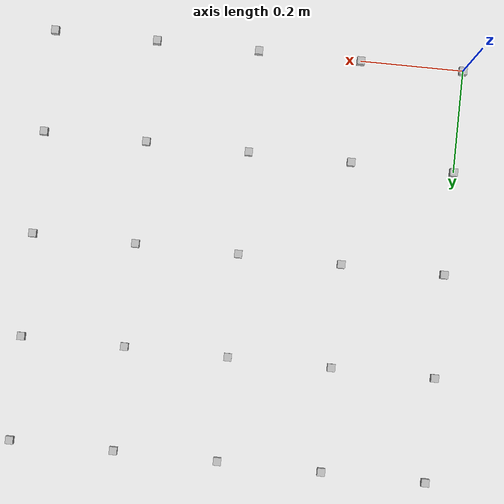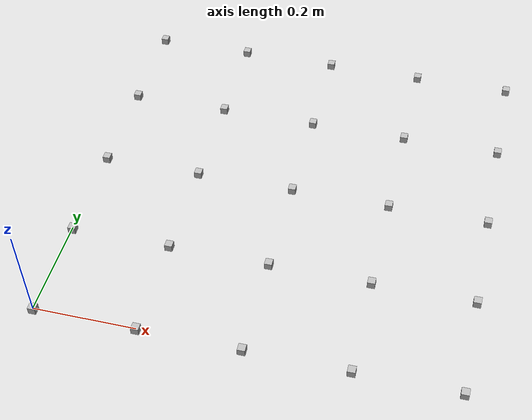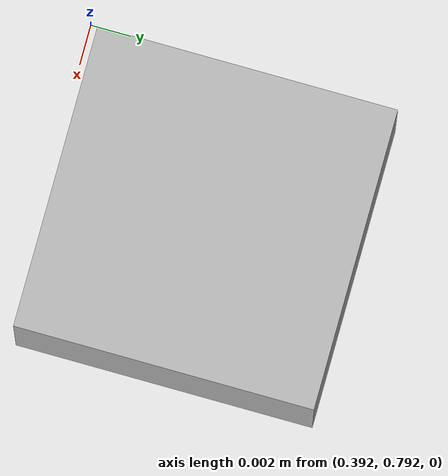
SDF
<sdf version="1.7">
  <model name="spring_damper_mesh">
    <static>false</static>
    <link name="mass_x-2_y-2">
      <pose>0.0 0.0 0 0 0 0</pose>
      <inertial>
        <mass>0.084</mass>
        <inertia>
          <ixx>1e-5</ixx>
          <ixy>0</ixy>
          <ixz>0</ixz>
          <iyy>1e-5</iyy>
          <iyz>0</iyz>
          <izz>1e-5</izz>
        </inertia>
      </inertial>
      <collision name="collision_x0_y0">
        <geometry>
          <sphere>
            <radius>0.001</radius>
          </sphere>
        </geometry>
      </collision>
      <visual name="visual_x0_y0">
        <geometry>
          <box>
            <size>0.015 0.015 0.015</size>
          </box>
        </geometry>
      </visual>
    </link>
    <link name="mass_x-1_y-2">
      <pose>0.2 0.0 0 0 0 0</pose>
      <inertial>
        <mass>0.084</mass>
        <inertia>
          <ixx>1e-5</ixx>
          <ixy>0</ixy>
          <ixz>0</ixz>
          <iyy>1e-5</iyy>
          <iyz>0</iyz>
          <izz>1e-5</izz>
        </inertia>
      </inertial>
      <collision name="collision_x1_y0">
        <geometry>
          <sphere>
            <radius>0.001</radius>
          </sphere>
        </geometry>
      </collision>
      <visual name="visual_x1_y0">
        <geometry>
          <box>
            <size>0.015 0.015 0.015</size>
          </box>
        </geometry>
      </visual>
    </link>
    <link name="mass_x0_y-2">
      <pose>0.4 0.0 0 0 0 0</pose>
      <inertial>
        <mass>0.084</mass>
        <inertia>
          <ixx>1e-5</ixx>
          <ixy>0</ixy>
          <ixz>0</ixz>
          <iyy>1e-5</iyy>
          <iyz>0</iyz>
          <izz>1e-5</izz>
        </inertia>
      </inertial>
      <collision name="collision_x2_y0">
        <geometry>
          <sphere>
            <radius>0.001</radius>
          </sphere>
        </geometry>
      </collision>
      <visual name="visual_x2_y0">
        <geometry>
          <box>
            <size>0.015 0.015 0.015</size>
          </box>
        </geometry>
      </visual>
    </link>
    <link name="mass_x1_y-2">
      <pose>0.6000000000000001 0.0 0 0 0 0</pose>
      <inertial>
        <mass>0.084</mass>
        <inertia>
          <ixx>1e-5</ixx>
          <ixy>0</ixy>
          <ixz>0</ixz>
          <iyy>1e-5</iyy>
          <iyz>0</iyz>
          <izz>1e-5</izz>
        </inertia>
      </inertial>
      <collision name="collision_x3_y0">
        <geometry>
          <sphere>
            <radius>0.001</radius>
          </sphere>
        </geometry>
      </collision>
      <visual name="visual_x3_y0">
        <geometry>
          <box>
            <size>0.015 0.015 0.015</size>
          </box>
        </geometry>
      </visual>
    </link>
    <link name="mass_x2_y-2">
      <pose>0.8 0.0 0 0 0 0</pose>
      <inertial>
        <mass>0.084</mass>
        <inertia>
          <ixx>1e-5</ixx>
          <ixy>0</ixy>
          <ixz>0</ixz>
          <iyy>1e-5</iyy>
          <iyz>0</iyz>
          <izz>1e-5</izz>
        </inertia>
      </inertial>
      <collision name="collision_x4_y0">
        <geometry>
          <sphere>
            <radius>0.001</radius>
          </sphere>
        </geometry>
      </collision>
      <visual name="visual_x4_y0">
        <geometry>
          <box>
            <size>0.015 0.015 0.015</size>
          </box>
        </geometry>
      </visual>
    </link>
    <link name="mass_x-2_y-1">
      <pose>0.0 0.2 0 0 0 0</pose>
      <inertial>
        <mass>0.084</mass>
        <inertia>
          <ixx>1e-5</ixx>
          <ixy>0</ixy>
          <ixz>0</ixz>
          <iyy>1e-5</iyy>
          <iyz>0</iyz>
          <izz>1e-5</izz>
        </inertia>
      </inertial>
      <collision name="collision_x0_y1">
        <geometry>
          <sphere>
            <radius>0.001</radius>
          </sphere>
        </geometry>
      </collision>
      <visual name="visual_x0_y1">
        <geometry>
          <box>
            <size>0.015 0.015 0.015</size>
          </box>
        </geometry>
      </visual>
    </link>
    <link name="mass_x-1_y-1">
      <pose>0.2 0.2 0 0 0 0</pose>
      <inertial>
        <mass>0.084</mass>
        <inertia>
          <ixx>1e-5</ixx>
          <ixy>0</ixy>
          <ixz>0</ixz>
          <iyy>1e-5</iyy>
          <iyz>0</iyz>
          <izz>1e-5</izz>
        </inertia>
      </inertial>
      <collision name="collision_x1_y1">
        <geometry>
          <sphere>
            <radius>0.001</radius>
          </sphere>
        </geometry>
      </collision>
      <visual name="visual_x1_y1">
        <geometry>
          <box>
            <size>0.015 0.015 0.015</size>
          </box>
        </geometry>
      </visual>
    </link>
    <link name="mass_x0_y-1">
      <pose>0.4 0.2 0 0 0 0</pose>
      <inertial>
        <mass>0.084</mass>
        <inertia>
          <ixx>1e-5</ixx>
          <ixy>0</ixy>
          <ixz>0</ixz>
          <iyy>1e-5</iyy>
          <iyz>0</iyz>
          <izz>1e-5</izz>
        </inertia>
      </inertial>
      <collision name="collision_x2_y1">
        <geometry>
          <sphere>
            <radius>0.001</radius>
          </sphere>
        </geometry>
      </collision>
      <visual name="visual_x2_y1">
        <geometry>
          <box>
            <size>0.015 0.015 0.015</size>
          </box>
        </geometry>
      </visual>
    </link>
    <link name="mass_x1_y-1">
      <pose>0.6000000000000001 0.2 0 0 0 0</pose>
      <inertial>
        <mass>0.084</mass>
        <inertia>
          <ixx>1e-5</ixx>
          <ixy>0</ixy>
          <ixz>0</ixz>
          <iyy>1e-5</iyy>
          <iyz>0</iyz>
          <izz>1e-5</izz>
        </inertia>
      </inertial>
      <collision name="collision_x3_y1">
        <geometry>
          <sphere>
            <radius>0.001</radius>
          </sphere>
        </geometry>
      </collision>
      <visual name="visual_x3_y1">
        <geometry>
          <box>
            <size>0.015 0.015 0.015</size>
          </box>
        </geometry>
      </visual>
    </link>
    <link name="mass_x2_y-1">
      <pose>0.8 0.2 0 0 0 0</pose>
      <inertial>
        <mass>0.084</mass>
        <inertia>
          <ixx>1e-5</ixx>
          <ixy>0</ixy>
          <ixz>0</ixz>
          <iyy>1e-5</iyy>
          <iyz>0</iyz>
          <izz>1e-5</izz>
        </inertia>
      </inertial>
      <collision name="collision_x4_y1">
        <geometry>
          <sphere>
            <radius>0.001</radius>
          </sphere>
        </geometry>
      </collision>
      <visual name="visual_x4_y1">
        <geometry>
          <box>
            <size>0.015 0.015 0.015</size>
          </box>
        </geometry>
      </visual>
    </link>
    <link name="mass_x-2_y0">
      <pose>0.0 0.4 0 0 0 0</pose>
      <inertial>
        <mass>0.084</mass>
        <inertia>
          <ixx>1e-5</ixx>
          <ixy>0</ixy>
          <ixz>0</ixz>
          <iyy>1e-5</iyy>
          <iyz>0</iyz>
          <izz>1e-5</izz>
        </inertia>
      </inertial>
      <collision name="collision_x0_y2">
        <geometry>
          <sphere>
            <radius>0.001</radius>
          </sphere>
        </geometry>
      </collision>
      <visual name="visual_x0_y2">
        <geometry>
          <box>
            <size>0.015 0.015 0.015</size>
          </box>
        </geometry>
      </visual>
    </link>
    <link name="mass_x-1_y0">
      <pose>0.2 0.4 0 0 0 0</pose>
      <inertial>
        <mass>0.084</mass>
        <inertia>
          <ixx>1e-5</ixx>
          <ixy>0</ixy>
          <ixz>0</ixz>
          <iyy>1e-5</iyy>
          <iyz>0</iyz>
          <izz>1e-5</izz>
        </inertia>
      </inertial>
      <collision name="collision_x1_y2">
        <geometry>
          <sphere>
            <radius>0.001</radius>
          </sphere>
        </geometry>
      </collision>
      <visual name="visual_x1_y2">
        <geometry>
          <box>
            <size>0.015 0.015 0.015</size>
          </box>
        </geometry>
      </visual>
    </link>
    <link name="mass_x0_y0">
      <pose>0.4 0.4 0 0 0 0</pose>
      <inertial>
        <mass>0.084</mass>
        <inertia>
          <ixx>1e-5</ixx>
          <ixy>0</ixy>
          <ixz>0</ixz>
          <iyy>1e-5</iyy>
          <iyz>0</iyz>
          <izz>1e-5</izz>
        </inertia>
      </inertial>
      <collision name="collision_x2_y2">
        <geometry>
          <sphere>
            <radius>0.001</radius>
          </sphere>
        </geometry>
      </collision>
      <visual name="visual_x2_y2">
        <geometry>
          <box>
            <size>0.015 0.015 0.015</size>
          </box>
        </geometry>
      </visual>
    </link>
    <link name="mass_x1_y0">
      <pose>0.6000000000000001 0.4 0 0 0 0</pose>
      <inertial>
        <mass>0.084</mass>
        <inertia>
          <ixx>1e-5</ixx>
          <ixy>0</ixy>
          <ixz>0</ixz>
          <iyy>1e-5</iyy>
          <iyz>0</iyz>
          <izz>1e-5</izz>
        </inertia>
      </inertial>
      <collision name="collision_x3_y2">
        <geometry>
          <sphere>
            <radius>0.001</radius>
          </sphere>
        </geometry>
      </collision>
      <visual name="visual_x3_y2">
        <geometry>
          <box>
            <size>0.015 0.015 0.015</size>
          </box>
        </geometry>
      </visual>
    </link>
    <link name="mass_x2_y0">
      <pose>0.8 0.4 0 0 0 0</pose>
      <inertial>
        <mass>0.084</mass>
        <inertia>
          <ixx>1e-5</ixx>
          <ixy>0</ixy>
          <ixz>0</ixz>
          <iyy>1e-5</iyy>
          <iyz>0</iyz>
          <izz>1e-5</izz>
        </inertia>
      </inertial>
      <collision name="collision_x4_y2">
        <geometry>
          <sphere>
            <radius>0.001</radius>
          </sphere>
        </geometry>
      </collision>
      <visual name="visual_x4_y2">
        <geometry>
          <box>
            <size>0.015 0.015 0.015</size>
          </box>
        </geometry>
      </visual>
    </link>
    <link name="mass_x-2_y1">
      <pose>0.0 0.6000000000000001 0 0 0 0</pose>
      <inertial>
        <mass>0.084</mass>
        <inertia>
          <ixx>1e-5</ixx>
          <ixy>0</ixy>
          <ixz>0</ixz>
          <iyy>1e-5</iyy>
          <iyz>0</iyz>
          <izz>1e-5</izz>
        </inertia>
      </inertial>
      <collision name="collision_x0_y3">
        <geometry>
          <sphere>
            <radius>0.001</radius>
          </sphere>
        </geometry>
      </collision>
      <visual name="visual_x0_y3">
        <geometry>
          <box>
            <size>0.015 0.015 0.015</size>
          </box>
        </geometry>
      </visual>
    </link>
    <link name="mass_x-1_y1">
      <pose>0.2 0.6000000000000001 0 0 0 0</pose>
      <inertial>
        <mass>0.084</mass>
        <inertia>
          <ixx>1e-5</ixx>
          <ixy>0</ixy>
          <ixz>0</ixz>
          <iyy>1e-5</iyy>
          <iyz>0</iyz>
          <izz>1e-5</izz>
        </inertia>
      </inertial>
      <collision name="collision_x1_y3">
        <geometry>
          <sphere>
            <radius>0.001</radius>
          </sphere>
        </geometry>
      </collision>
      <visual name="visual_x1_y3">
        <geometry>
          <box>
            <size>0.015 0.015 0.015</size>
          </box>
        </geometry>
      </visual>
    </link>
    <link name="mass_x0_y1">
      <pose>0.4 0.6000000000000001 0 0 0 0</pose>
      <inertial>
        <mass>0.084</mass>
        <inertia>
          <ixx>1e-5</ixx>
          <ixy>0</ixy>
          <ixz>0</ixz>
          <iyy>1e-5</iyy>
          <iyz>0</iyz>
          <izz>1e-5</izz>
        </inertia>
      </inertial>
      <collision name="collision_x2_y3">
        <geometry>
          <sphere>
            <radius>0.001</radius>
          </sphere>
        </geometry>
      </collision>
      <visual name="visual_x2_y3">
        <geometry>
          <box>
            <size>0.015 0.015 0.015</size>
          </box>
        </geometry>
      </visual>
    </link>
    <link name="mass_x1_y1">
      <pose>0.6000000000000001 0.6000000000000001 0 0 0 0</pose>
      <inertial>
        <mass>0.084</mass>
        <inertia>
          <ixx>1e-5</ixx>
          <ixy>0</ixy>
          <ixz>0</ixz>
          <iyy>1e-5</iyy>
          <iyz>0</iyz>
          <izz>1e-5</izz>
        </inertia>
      </inertial>
      <collision name="collision_x3_y3">
        <geometry>
          <sphere>
            <radius>0.001</radius>
          </sphere>
        </geometry>
      </collision>
      <visual name="visual_x3_y3">
        <geometry>
          <box>
            <size>0.015 0.015 0.015</size>
          </box>
        </geometry>
      </visual>
    </link>
    <link name="mass_x2_y1">
      <pose>0.8 0.6000000000000001 0 0 0 0</pose>
      <inertial>
        <mass>0.084</mass>
        <inertia>
          <ixx>1e-5</ixx>
          <ixy>0</ixy>
          <ixz>0</ixz>
          <iyy>1e-5</iyy>
          <iyz>0</iyz>
          <izz>1e-5</izz>
        </inertia>
      </inertial>
      <collision name="collision_x4_y3">
        <geometry>
          <sphere>
            <radius>0.001</radius>
          </sphere>
        </geometry>
      </collision>
      <visual name="visual_x4_y3">
        <geometry>
          <box>
            <size>0.015 0.015 0.015</size>
          </box>
        </geometry>
      </visual>
    </link>
    <link name="mass_x-2_y2">
      <pose>0.0 0.8 0 0 0 0</pose>
      <inertial>
        <mass>0.084</mass>
        <inertia>
          <ixx>1e-5</ixx>
          <ixy>0</ixy>
          <ixz>0</ixz>
          <iyy>1e-5</iyy>
          <iyz>0</iyz>
          <izz>1e-5</izz>
        </inertia>
      </inertial>
      <collision name="collision_x0_y4">
        <geometry>
          <sphere>
            <radius>0.001</radius>
          </sphere>
        </geometry>
      </collision>
      <visual name="visual_x0_y4">
        <geometry>
          <box>
            <size>0.015 0.015 0.015</size>
          </box>
        </geometry>
      </visual>
    </link>
    <link name="mass_x-1_y2">
      <pose>0.2 0.8 0 0 0 0</pose>
      <inertial>
        <mass>0.084</mass>
        <inertia>
          <ixx>1e-5</ixx>
          <ixy>0</ixy>
          <ixz>0</ixz>
          <iyy>1e-5</iyy>
          <iyz>0</iyz>
          <izz>1e-5</izz>
        </inertia>
      </inertial>
      <collision name="collision_x1_y4">
        <geometry>
          <sphere>
            <radius>0.001</radius>
          </sphere>
        </geometry>
      </collision>
      <visual name="visual_x1_y4">
        <geometry>
          <box>
            <size>0.015 0.015 0.015</size>
          </box>
        </geometry>
      </visual>
    </link>
    <link name="mass_x0_y2">
      <pose>0.4 0.8 0 0 0 0</pose>
      <inertial>
        <mass>0.084</mass>
        <inertia>
          <ixx>1e-5</ixx>
          <ixy>0</ixy>
          <ixz>0</ixz>
          <iyy>1e-5</iyy>
          <iyz>0</iyz>
          <izz>1e-5</izz>
        </inertia>
      </inertial>
      <collision name="collision_x2_y4">
        <geometry>
          <sphere>
            <radius>0.001</radius>
          </sphere>
        </geometry>
      </collision>
      <visual name="visual_x2_y4">
        <geometry>
          <box>
            <size>0.015 0.015 0.015</size>
          </box>
        </geometry>
      </visual>
    </link>
    <link name="mass_x1_y2">
      <pose>0.6000000000000001 0.8 0 0 0 0</pose>
      <inertial>
        <mass>0.084</mass>
        <inertia>
          <ixx>1e-5</ixx>
          <ixy>0</ixy>
          <ixz>0</ixz>
          <iyy>1e-5</iyy>
          <iyz>0</iyz>
          <izz>1e-5</izz>
        </inertia>
      </inertial>
      <collision name="collision_x3_y4">
        <geometry>
          <sphere>
            <radius>0.001</radius>
          </sphere>
        </geometry>
      </collision>
      <visual name="visual_x3_y4">
        <geometry>
          <box>
            <size>0.015 0.015 0.015</size>
          </box>
        </geometry>
      </visual>
    </link>
    <link name="mass_x2_y2">
      <pose>0.8 0.8 0 0 0 0</pose>
      <inertial>
        <mass>0.084</mass>
        <inertia>
          <ixx>1e-5</ixx>
          <ixy>0</ixy>
          <ixz>0</ixz>
          <iyy>1e-5</iyy>
          <iyz>0</iyz>
          <izz>1e-5</izz>
        </inertia>
      </inertial>
      <collision name="collision_x4_y4">
        <geometry>
          <sphere>
            <radius>0.001</radius>
          </sphere>
        </geometry>
      </collision>
      <visual name="visual_x4_y4">
        <geometry>
          <box>
            <size>0.015 0.015 0.015</size>
          </box>
        </geometry>
      </visual>
    </link>
    <joint name="N_x-2_y-2_to_x-1_y-2" type="ball">
      <parent>mass_x-2_y-2</parent>
      <child>mass_x-1_y-2</child>
      <pose relative_to="mass_x1_y0">-0.1 0 0 0 0 0</pose>
    </joint>
    <joint name="N_x-1_y-2_to_x0_y-2" type="ball">
      <parent>mass_x-1_y-2</parent>
      <child>mass_x0_y-2</child>
      <pose relative_to="mass_x2_y0">-0.1 0 0 0 0 0</pose>
    </joint>
    <joint name="N_x0_y-2_to_x1_y-2" type="ball">
      <parent>mass_x0_y-2</parent>
      <child>mass_x1_y-2</child>
      <pose relative_to="mass_x3_y0">-0.1 0 0 0 0 0</pose>
    </joint>
    <joint name="W_x2_y0_to_x2_y1" type="ball">
      <parent>mass_x2_y0</parent>
      <child>mass_x2_y1</child>
      <pose relative_to="mass_x2_y1">0 -0.1 0 0 0 1.5707963267948966</pose>
    </joint>
    <joint name="N_x1_y-2_to_x2_y-2" type="ball">
      <parent>mass_x1_y-2</parent>
      <child>mass_x2_y-2</child>
      <pose relative_to="mass_x4_y0">-0.1 0 0 0 0 0</pose>
    </joint>
    <joint name="N_x-2_y-1_to_x-1_y-1" type="ball">
      <parent>mass_x-2_y-1</parent>
      <child>mass_x-1_y-1</child>
      <pose relative_to="mass_x1_y1">-0.1 0 0 0 0 0</pose>
    </joint>
    <joint name="N_x-1_y-1_to_x0_y-1" type="ball">
      <parent>mass_x-1_y-1</parent>
      <child>mass_x0_y-1</child>
      <pose relative_to="mass_x2_y1">-0.1 0 0 0 0 0</pose>
    </joint>
    <joint name="N_x0_y-1_to_x1_y-1" type="ball">
      <parent>mass_x0_y-1</parent>
      <child>mass_x1_y-1</child>
      <pose relative_to="mass_x3_y1">-0.1 0 0 0 0 0</pose>
    </joint>
    <joint name="W_x2_y1_to_x2_y2" type="ball">
      <parent>mass_x2_y1</parent>
      <child>mass_x2_y2</child>
      <pose relative_to="mass_x2_y2">0 -0.1 0 0 0 1.5707963267948966</pose>
    </joint>
    <joint name="N_x1_y-1_to_x2_y-1" type="ball">
      <parent>mass_x1_y-1</parent>
      <child>mass_x2_y-1</child>
      <pose relative_to="mass_x4_y1">-0.1 0 0 0 0 0</pose>
    </joint>
    <joint name="N_x-2_y0_to_x-1_y0" type="ball">
      <parent>mass_x-2_y0</parent>
      <child>mass_x-1_y0</child>
      <pose relative_to="mass_x1_y2">-0.1 0 0 0 0 0</pose>
    </joint>
    <joint name="N_x-1_y0_to_x0_y0" type="ball">
      <parent>mass_x-1_y0</parent>
      <child>mass_x0_y0</child>
      <pose relative_to="mass_x2_y2">-0.1 0 0 0 0 0</pose>
    </joint>
    <joint name="N_x0_y0_to_x1_y0" type="ball">
      <parent>mass_x0_y0</parent>
      <child>mass_x1_y0</child>
      <pose relative_to="mass_x3_y2">-0.1 0 0 0 0 0</pose>
    </joint>
    <joint name="W_x2_y2_to_x2_y3" type="ball">
      <parent>mass_x2_y2</parent>
      <child>mass_x2_y3</child>
      <pose relative_to="mass_x2_y3">0 -0.1 0 0 0 1.5707963267948966</pose>
    </joint>
    <joint name="N_x1_y0_to_x2_y0" type="ball">
      <parent>mass_x1_y0</parent>
      <child>mass_x2_y0</child>
      <pose relative_to="mass_x4_y2">-0.1 0 0 0 0 0</pose>
    </joint>
    <joint name="N_x-2_y1_to_x-1_y1" type="ball">
      <parent>mass_x-2_y1</parent>
      <child>mass_x-1_y1</child>
      <pose relative_to="mass_x1_y3">-0.1 0 0 0 0 0</pose>
    </joint>
    <joint name="N_x-1_y1_to_x0_y1" type="ball">
      <parent>mass_x-1_y1</parent>
      <child>mass_x0_y1</child>
      <pose relative_to="mass_x2_y3">-0.1 0 0 0 0 0</pose>
    </joint>
    <joint name="N_x0_y1_to_x1_y1" type="ball">
      <parent>mass_x0_y1</parent>
      <child>mass_x1_y1</child>
      <pose relative_to="mass_x3_y3">-0.1 0 0 0 0 0</pose>
    </joint>
    <joint name="W_x2_y3_to_x2_y4" type="ball">
      <parent>mass_x2_y3</parent>
      <child>mass_x2_y4</child>
      <pose relative_to="mass_x2_y4">0 -0.1 0 0 0 1.5707963267948966</pose>
    </joint>
    <joint name="N_x1_y1_to_x2_y1" type="ball">
      <parent>mass_x1_y1</parent>
      <child>mass_x2_y1</child>
      <pose relative_to="mass_x4_y3">-0.1 0 0 0 0 0</pose>
    </joint>
    <joint name="N_x-2_y2_to_x-1_y2" type="ball">
      <parent>mass_x-2_y2</parent>
      <child>mass_x-1_y2</child>
      <pose relative_to="mass_x1_y4">-0.1 0 0 0 0 0</pose>
    </joint>
    <joint name="N_x-1_y2_to_x0_y2" type="ball">
      <parent>mass_x-1_y2</parent>
      <child>mass_x0_y2</child>
      <pose relative_to="mass_x2_y4">-0.1 0 0 0 0 0</pose>
    </joint>
    <joint name="N_x0_y2_to_x1_y2" type="ball">
      <parent>mass_x0_y2</parent>
      <child>mass_x1_y2</child>
      <pose relative_to="mass_x3_y4">-0.1 0 0 0 0 0</pose>
    </joint>
    <joint name="N_x1_y2_to_x2_y2" type="ball">
      <parent>mass_x1_y2</parent>
      <child>mass_x2_y2</child>
      <pose relative_to="mass_x4_y4">-0.1 0 0 0 0 0</pose>
    </joint>
  </model>
</sdf>
